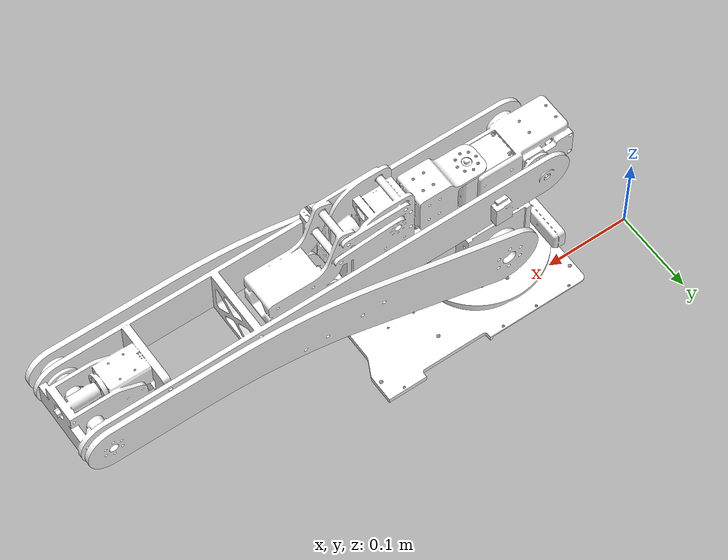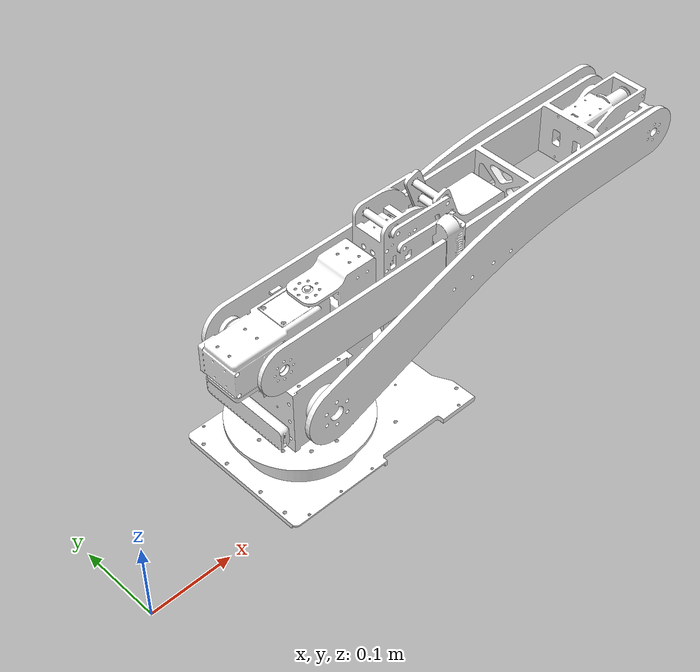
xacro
<?xml version="1.0"?>

<!-- 実機制御用のURDF -->

<robot xmlns:xacro="http://ros.org/wiki/xacro" name="sekirei">
    <!-- Base link with inertial -->
    <!-- Inertia, mass等はあくまで推定値!! -->
    <xacro:arg name="use_real_hw" default="false"/>
    <link name="base_link">
        <inertial>
            <mass value="1.0"/>
            <origin xyz="0 0 0"/>
            <!-- 慣性テンソル -->
            <inertia ixx="0.01" ixy="0.0" ixz="0.0" iyy="0.01" iyz="0.0" izz="0.01"/>
        </inertial>
    </link>

    <!-- Arm Base Link -->
    <link name="arm_base_link">
        <visual>
            <geometry>
                <mesh filename="package://robot_model/meshes/r_a_2019_2020_asm1.STL"/>
            </geometry>
            <origin xyz="-0.08 -0.081 0" rpy="1.57 0 0"/>
            <material name="white">
                <color rgba="1 1 1 1"/>
            </material>
        </visual>
        <collision>
            <geometry>
                <cylinder length="0.1" radius="0.05"/>
            </geometry>
            <origin xyz="0 0 0.05" rpy="0 0 0"/>
        </collision>
        <inertial>
            <mass value="0.5"/>
            <origin xyz="0 0 0.05"/>
            <inertia ixx="0.001" ixy="0.0" ixz="0.0" iyy="0.001" iyz="0.0" izz="0.001"/>
        </inertial>
    </link>

    <joint name="arm_base_link_joint" type="fixed">
        <origin xyz="0.2 0 0.1" rpy="0 0 0"/>
        <parent link="base_link"/>
        <child link="arm_base_link"/>
    </joint>

    <!-- Arm Link 1 -->
    <link name="arm1_link">
        <visual>
            <geometry>
                <mesh filename="package://robot_model/meshes/r_a_2019_2020_asm2.STL"/>
            </geometry>
            <origin xyz="0 0 0.004" rpy="1.57 0 0"/>
            <material name="white">
                <color rgba="1 1 1 1"/>
            </material>
        </visual>
        <collision>
            <geometry>
                <cylinder length="0.08" radius="0.04"/>
            </geometry>
            <origin xyz="0 0 0.04" rpy="0 0 0"/>
        </collision>
        <inertial>
            <mass value="0.3"/>
            <origin xyz="0 0 0.04"/>
            <inertia ixx="0.0008" ixy="0.0" ixz="0.0" iyy="0.0008" iyz="0.0" izz="0.0002"/>
        </inertial>
    </link>

    <joint name="arm_joint1" type="revolute">
        <origin xyz="0 0 0" rpy="0 0 0"/>
        <axis xyz="0 0 1"/>
        <parent link="arm_base_link"/>
        <child link="arm1_link"/>
        <limit effort="5" lower="-3.14" upper="3.14" velocity="1.571"/>
    </joint>

    <!-- Arm Link 2 -->
    <link name="arm2_link">
        <visual>
            <geometry>
                <mesh filename="package://robot_model/meshes/r_a_2019_2020_asm3.STL"/>
            </geometry>
            <origin xyz="0 0 0" rpy="1.57 0 0"/>
            <material name="white">
                <color rgba="1 1 1 1"/>
            </material>
        </visual>
        <collision>
            <geometry>
                <box size="0.45 0.08 0.08"/>
            </geometry>
            <origin xyz="0.225 0 0" rpy="0 0 0"/>
        </collision>
        <inertial>
            <mass value="0.6"/>
            <origin xyz="0.225 0 0"/>
            <inertia ixx="0.001" ixy="0.0" ixz="0.0" iyy="0.010" iyz="0.0" izz="0.010"/>
        </inertial>
    </link>

    <joint name="arm_joint2" type="revolute">
        <origin xyz="0 -0.048 0.078" rpy="0 0 0"/>
        <axis xyz="0 1 0"/>
        <parent link="arm1_link"/>
        <child link="arm2_link"/>
        <limit effort="5" lower="-3.14" upper="3.14" velocity="1.571"/>
    </joint>

    <!-- Arm Link 3 -->
    <link name="arm3_link">
        <visual>
            <geometry>
                <mesh filename="package://robot_model/meshes/r_a_2019_2020_asm4.STL"/>
            </geometry>
            <origin xyz="0 0 0" rpy="1.57 0 0"/>
            <material name="white">
                <color rgba="1 1 1 1"/>
            </material>
        </visual>
        <collision>
            <geometry>
                <box size="0.5 0.08 0.08"/>
            </geometry>
            <origin xyz="-0.25 0 0" rpy="0 0 0"/>
        </collision>
        <inertial>
            <mass value="0.5"/>
            <origin xyz="-0.25 0 0"/>
            <inertia ixx="0.001" ixy="0.0" ixz="0.0" iyy="0.010" iyz="0.0" izz="0.010"/>
        </inertial>
    </link>

    <joint name="arm_joint3" type="revolute">
        <origin xyz="0.45 0.007 0.084" rpy="0 0 0"/>
        <axis xyz="0 -1 0"/>
        <parent link="arm2_link"/>
        <child link="arm3_link"/>
        <limit effort="5" lower="-3.14" upper="3.14" velocity="1.571"/>
    </joint>

    <!-- Arm Link 4 -->
    <link name="arm4_link">
        <visual>
            <geometry>
                <mesh filename="package://robot_model/meshes/r_a_2019_2020_asm5.STL"/>
            </geometry>
            <origin xyz="0 0 0" rpy="1.57 3.14 0"/>
            <material name="white">
                <color rgba="1 1 1 1"/>
            </material>
        </visual>
        <collision>
            <geometry>
                <cylinder length="0.08" radius="0.03"/>
            </geometry>
            <origin xyz="0 0 0.04" rpy="0 0 0"/>
        </collision>
        <inertial>
            <mass value="0.2"/>
            <origin xyz="0 0 0.04"/>
            <inertia ixx="0.0005" ixy="0.0" ixz="0.0" iyy="0.0005" iyz="0.0" izz="0.0001"/>
        </inertial>
    </link>

    <joint name="arm_joint4" type="revolute">
        <origin xyz="-0.5 0.012 0" rpy="0 0 0"/>
        <axis xyz="0 1 0"/>
        <parent link="arm3_link"/>
        <child link="arm4_link"/>
        <limit effort="5" lower="-3.14" upper="3.14" velocity="1.571"/>
    </joint>

    <!-- Arm Link 5 -->
    <link name="arm5_link">
        <visual>
            <geometry>
                <mesh filename="package://robot_model/meshes/r_a_2019_l_asm6.STL"/>
            </geometry>
            <origin xyz="0 0 0" rpy="1.57 3.14 0"/>
            <material name="white">
                <color rgba="1 1 1 1"/>
            </material>
        </visual>
        <collision>
            <geometry>
                <cylinder length="0.06" radius="0.025"/>
            </geometry>
            <origin xyz="0 0 0.03" rpy="0 0 0"/>
        </collision>
        <inertial>
            <mass value="0.1"/>
            <origin xyz="0 0 0.03"/>
            <inertia ixx="0.0002" ixy="0.0" ixz="0.0" iyy="0.0002" iyz="0.0" izz="0.0001"/>
        </inertial>
    </link>

    <joint name="arm_joint5" type="revolute">
        <origin xyz="0.06525 0.028 0.029647" rpy="0 0 0"/>
        <axis xyz="0 0 1"/>
        <parent link="arm4_link"/>
        <child link="arm5_link"/>
        <limit effort="5" lower="-1.57" upper="1.57" velocity="1.571"/>
    </joint>

    <!-- Arm Link 6 -->
    <link name="arm6_link">
        <visual>
            <geometry>
                <mesh filename="package://robot_model/meshes/r_a_2019_l_asm7_ver2.STL"/>
            </geometry>
            <origin xyz="0 0 0" rpy="0 3.14 0"/>
            <material name="white">
                <color rgba="1 1 1 1"/>
            </material>
        </visual>
        <collision>
            <geometry>
                <cylinder length="0.05" radius="0.02"/>
            </geometry>
            <origin xyz="0 0 0.025" rpy="0 0 0"/>
        </collision>
        <inertial>
            <mass value="0.1"/>
            <origin xyz="0 0 0.025"/>
            <inertia ixx="0.0001" ixy="0.0" ixz="0.0" iyy="0.0001" iyz="0.0" izz="0.0001"/>
        </inertial>
    </link>

    <joint name="arm_joint6" type="revolute">
        <origin xyz="0.07425 0 -0.03" rpy="0 0 0"/>
        <axis xyz="1 0 0"/>
        <parent link="arm5_link"/>
        <child link="arm6_link"/>
        <limit effort="5" lower="-3.14" upper="3.14" velocity="1.571"/>
    </joint>

    <!-- Camera Links (simplified) -->
    <link name="gui_d435_link">
        <visual>
            <geometry>
                <mesh filename="package://robot_model/meshes/d435.STL"/>
            </geometry>
            <origin xyz="0 0 0" rpy="1.57 0 -1.57"/>
            <material name="white">
                <color rgba="1 1 1 1"/>
            </material>
        </visual>
        <collision>
            <geometry>
                <box size="0.02 0.09 0.025"/>
            </geometry>
            <origin xyz="0 0 0" rpy="0 0 0"/>
        </collision>
        <inertial>
            <mass value="0.05"/>
            <origin xyz="0 0 0"/>
            <inertia ixx="0.00001" ixy="0.0" ixz="0.0" iyy="0.00001" iyz="0.0" izz="0.00001"/>
        </inertial>
    </link>

    <joint name="gui_d435_joint" type="fixed">
        <origin xyz="0.066 -0.03105 0" rpy="1.57 0 0"/>
        <parent link="arm6_link"/>
        <child link="gui_d435_link"/>
    </joint>

    <link name="gui_t265_link">
        <visual>
            <geometry>
                <mesh filename="package://robot_model/meshes/t265.STL"/>
            </geometry>
            <origin xyz="0 0 0" rpy="1.57 3.14 1.57"/>
            <material name="white">
                <color rgba="1 1 1 1"/>
            </material>
        </visual>
        <collision>
            <geometry>
                <box size="0.02 0.108 0.025"/>
            </geometry>
            <origin xyz="0 0 0" rpy="0 0 0"/>
        </collision>
        <inertial>
            <mass value="0.05"/>
            <origin xyz="0 0 0"/>
            <inertia ixx="0.00001" ixy="0.0" ixz="0.0" iyy="0.00001" iyz="0.0" izz="0.00001"/>
        </inertial>
    </link>

    <joint name="gui_t265_joint" type="fixed">
        <origin xyz="-0.05945 0.02 0.073" rpy="3.14 3.14 0"/>
        <parent link="arm1_link"/>
        <child link="gui_t265_link"/>
    </joint>

    <link name="gripper_left_link"/>
    <link name="gripper_right_link"/>

    <joint name="gripper_joint7" type="revolute">
    <parent link="arm6_link"/>
    <child link="gripper_left_link"/>
    <origin xyz="0 0 0" rpy="0 0 0"/>
    <axis xyz="0 1 0"/>
    <limit lower="-1.57" upper="1.57" effort="5" velocity="1.0"/>
    </joint>

    <joint name="gripper_joint8" type="revolute">
    <parent link="arm6_link"/>
    <child link="gripper_right_link"/>
    <origin xyz="0 0 0" rpy="0 0 0"/>
    <axis xyz="0 1 0"/>
    <limit lower="-1.57" upper="1.57" effort="5" velocity="1.0"/>
    </joint>

    <!-- transmissions for ros2_control / dynamixel_hardware -->
    <!-- SimpleTransmission used to map actuator to joint -->
    <transmission name="arm_joint1_trans">
        <type>transmission_interface/SimpleTransmission</type>
        <actuator name="arm_joint1_motor">
        <!-- 減速比しらべて書く (negative values can be set??)-->
            <mechanicalReduction>20</mechanicalReduction>
            <hardwareInterface>hardware_interface/PositionJointInterface</hardwareInterface>
        </actuator>
        <joint name="arm_joint1">
            <hardwareInterface>hardware_interface/PositionJointInterface</hardwareInterface>
        </joint>
    </transmission>

    <transmission name="arm_joint2_trans">
        <type>transmission_interface/SimpleTransmission</type>
        <actuator name="arm_joint2_motor">
            <mechanicalReduction>20</mechanicalReduction>
            <hardwareInterface>hardware_interface/PositionJointInterface</hardwareInterface>
        </actuator>
        <joint name="arm_joint2">
            <hardwareInterface>hardware_interface/PositionJointInterface</hardwareInterface>
        </joint>
    </transmission>

    <transmission name="arm_joint3_trans">
        <type>transmission_interface/SimpleTransmission</type>
        <actuator name="arm_joint3_motor">
            <mechanicalReduction>20</mechanicalReduction>
	    <hardwareInterface>hardware_interface/PositionJointInterface</hardwareInterface>

        </actuator>
        <joint name="arm_joint3">
            <hardwareInterface>hardware_interface/PositionJointInterface</hardwareInterface>
        </joint>
    </transmission>

    <transmission name="arm_joint4_trans">
        <type>transmission_interface/SimpleTransmission</type>
        <actuator name="arm_joint4_motor">
            <mechanicalReduction>1</mechanicalReduction>
            <hardwareInterface>hardware_interface/PositionJointInterface</hardwareInterface>
        </actuator>
        <joint name="arm_joint4">
            <hardwareInterface>hardware_interface/PositionJointInterface</hardwareInterface>
        </joint>
    </transmission>

    <transmission name="arm_joint5_trans">
        <type>transmission_interface/SimpleTransmission</type>
        <actuator name="arm_joint5_motor">
            <mechanicalReduction>1</mechanicalReduction>
            <hardwareInterface>hardware_interface/PositionJointInterface</hardwareInterface>
        </actuator>
        <joint name="arm_joint5">
            <hardwareInterface>hardware_interface/PositionJointInterface</hardwareInterface>
        </joint>
    </transmission>

    <transmission name="arm_joint6_trans">
        <type>transmission_interface/SimpleTransmission</type>
        <actuator name="arm_joint6_motor">
            <mechanicalReduction>1</mechanicalReduction>
            <hardwareInterface>hardware_interface/PositionJointInterface</hardwareInterface>
        </actuator>
        <joint name="arm_joint6">
            <hardwareInterface>hardware_interface/PositionJointInterface</hardwareInterface>
        </joint>
    </transmission>

    <transmission name="gripper_joint7_trans">
        <type>transmission_interface/SimpleTransmission</type>
        <actuator name="gripper_joint7_motor">
            <mechanicalReduction>1</mechanicalReduction>
            <hardwareInterface
            >hardware_interface/PositionJointInterface</hardwareInterface>
        </actuator>
        <joint name="gripper_joint7">
            <hardwareInterface
            >hardware_interface/PositionJointInterface</hardwareInterface>
        </joint>
    </transmission>

    <transmission name="gripper_joint8_trans">
        <type>transmission_interface/SimpleTransmission</type>
        <actuator name="gripper_joint8_motor">
            <mechanicalReduction>1</mechanicalReduction>
            <hardwareInterface
            >hardware_interface/PositionJointInterface</hardwareInterface>
        </actuator>
        <joint name="gripper_joint8">
            <hardwareInterface
            >hardware_interface/PositionJointInterface</hardwareInterface>
        </joint>
    </transmission>

    <!-- ros2_control configuration for dynamixel_hardware_interface -->

    <!-- Launchファイルから実機制御するかを指定する -->
    <xacro:property name="use_real_hw" value="$(arg use_real_hw)" />

    <xacro:if value="$(arg use_real_hw)">
    <ros2_control name="sekirei_dynamixel_hw" type="system">
        <hardware>
            <!-- plugin provided by dynamixel_hardware_interface package -->
            <plugin>dynamixel_hardware_interface/DynamixelHardware</plugin>
            <!-- Assumptions: XM540-W270 on /dev/ttyUSB0 at 1Mbps. -->
            <param name="port_name">/dev/ttyUSB0</param>
            <param name="baud_rate">1000000</param>
            <param name="error_timeout_ms">1000</param>
            <param name="number_of_joints">8</param>
            <param name="number_of_transmissions">8</param>
            <param name="dynamixel_model_folder">/param/dxl_model</param>
            <param name="disable_torque_at_init">true</param>
            <param name="ignore_hardware_error">true</param>
            <param name="ping_retry_count">3</param>
            <!-- 1:1 mapping: arm_joint1<->dxl21, arm_joint2<->dxl22, ... arm_joint6<->dxl26 (IDs: 21-28, only using 21-26 for 6 joints) -->
            <!-- このへんあやしい -->
          <!-- Real-hardware mapping: invert joint3 sign so hardware commands/states match URDF orientation
              Simulation (use_real_hw=false) will keep the identity mapping in its branch. -->
          <param
                    name="joint_to_transmission_matrix"
                >1,0,0,0,0,0,0,0, 0,1,0,0,0,0,0,0, 0,0,1,0,0,0,0,0, 0,0,0,1,0,0,0,0, 0,0,0,0,1,0,0,0, 0,0,0,0,0,1,0,0, 0,0,0,0,0,0,1,0, 0,0,0,0,0,0,0,1</param>
         <param
                    name="transmission_to_joint_matrix"
                >1,0,0,0,0,0,0,0, 0,1,0,0,0,0,0,0, 0,0,1,0,0,0,0,0, 0,0,0,1,0,0,0,0, 0,0,0,0,1,0,0,0, 0,0,0,0,0,1,0,0, 0,0,0,0,0,0,1,0, 0,0,0,0,0,0,0,1</param>
        </hardware>

        <!-- Joint configurations -->
        <joint name="arm_joint1">
            <command_interface name="position"/>
            <state_interface name="position"/>
            <state_interface name="velocity"/>
        </joint>
        <joint name="arm_joint2">
            <command_interface name="position"/>
            <state_interface name="position"/>
            <state_interface name="velocity"/>
        </joint>
        <joint name="arm_joint3">
            <command_interface name="position"/>
            <state_interface name="position"/>
            <state_interface name="velocity"/>
        </joint>
        <joint name="arm_joint4">
            <command_interface name="position"/>
            <state_interface name="position"/>
            <state_interface name="velocity"/>
        </joint>
        <joint name="arm_joint5">
            <command_interface name="position"/>
            <state_interface name="position"/>
            <state_interface name="velocity"/>
        </joint>
        <joint name="arm_joint6">
            <command_interface name="position"/>
            <state_interface name="position"/>
            <state_interface name="velocity"/>
        </joint>

        <joint name="gripper_joint7">
            <command_interface name="position" />
            <state_interface name="position" />
            <state_interface name="velocity" />
            <state_interface name="effort" />
        </joint>

        <joint name="gripper_joint8">
            <command_interface name="position" />
            <state_interface name="position" />
            <state_interface name="velocity" />
            <state_interface name="effort" />
        </joint>

        <!-- GPIO configurations for Dynamixel motors (IDs: 21-26) -->
        <!-- Note: ID 26 is XM430-W350 (model 1020), others are XM540-W270 (model 1120) -->
        <gpio name="dxl1">
            <param name="type">dxl</param>
            <param name="ID">21</param>
            <command_interface name="Goal Position"/>
            <state_interface name="Present Position"/>
            <state_interface name="Present Velocity"/>
            <state_interface name="Present Current"/>
            <param name="Position P Gain">800</param>
            <param name="Position I Gain">0</param>
            <param name="Position D Gain">4000</param>
            <param name="Drive Mode">1</param>
        </gpio>
        <gpio name="dxl2">
            <param name="type">dxl</param>
            <param name="ID">22</param>
            <command_interface name="Goal Position"/>
            <state_interface name="Present Position"/>
            <state_interface name="Present Velocity"/>
            <state_interface name="Present Current"/>
            <param name="Position P Gain">800</param>
            <param name="Position I Gain">0</param>
            <param name="Position D Gain">4000</param>
            <param name="Drive Mode">0</param>
        </gpio>
        <gpio name="dxl3">
            <param name="type">dxl</param>
            <param name="ID">23</param>
            <command_interface name="Goal Position"/>
            <state_interface name="Present Position"/>
            <state_interface name="Present Velocity"/>
            <state_interface name="Present Current"/>
            <param name="Position P Gain">800</param>
            <param name="Position I Gain">0</param>
            <param name="Position D Gain">4000</param>
            <param name="Drive Mode">1</param>
            <!-- ここ反転の可能性大きい -->
            <!-- やっぱちがうかも -->
            <!-- 向きは1でそろう -->
        </gpio>
        <gpio name="dxl4">
            <param name="type">dxl</param>
            <param name="ID">24</param>
            <command_interface name="Goal Position"/>
            <state_interface name="Present Position"/>
            <state_interface name="Present Velocity"/>
            <state_interface name="Present Current"/>
            <param name="Position P Gain">800</param>
            <param name="Position I Gain">0</param>
            <param name="Position D Gain">4000</param>
            <param name="Drive Mode">0</param>
        </gpio>
        <gpio name="dxl5">
            <param name="type">dxl</param>
            <param name="ID">25</param>
            <command_interface name="Goal Position"/>
            <state_interface name="Present Position"/>
            <state_interface name="Present Velocity"/>
            <state_interface name="Present Current"/>
            <param name="Position P Gain">800</param>
            <param name="Position I Gain">0</param>
            <param name="Position D Gain">4000</param>
            <param name="Drive Mode">0</param>
        </gpio>
        <gpio name="dxl6">
            <param name="type">dxl</param>
            <param name="ID">26</param>
            <command_interface name="Goal Position"/>
            <state_interface name="Present Position"/>
            <state_interface name="Present Velocity"/>
            <state_interface name="Present Current"/>
            <param name="Position P Gain">800</param>
            <param name="Position I Gain">0</param>
            <param name="Position D Gain">4000</param>
            <param name="Drive Mode">0</param>
        </gpio>

        <gpio name="dxl7">
            <param name="type">dxl</param>
            <param name="ID">27</param>
            <command_interface name="Goal Position" />
            <state_interface name="Present Position" />
            <state_interface name="Present Velocity" />
            <state_interface name="Present Current" />
            <param name="Position P Gain">800</param>
            <param name="Position I Gain">0</param>
            <param name="Position D Gain">4000</param>
            <param name="Drive Mode">0</param>
        </gpio>

        <gpio name="dxl8">
            <param name="type">dxl</param>
            <param name="ID">28</param>
            <command_interface name="Goal Position" />
            <state_interface name="Present Position" />
            <state_interface name="Present Velocity" />
            <state_interface name="Present Current" />
            <param name="Position P Gain">800</param>
            <param name="Position I Gain">0</param>
            <param name="Position D Gain">4000</param>
            <param name="Drive Mode">0</param>
        </gpio>

    </ros2_control>
    </xacro:if>

    <xacro:unless value="$(arg use_real_hw)">
     <!-- ros2_control configuration for dummy/mock hardware -->
    <ros2_control name="sekirei_dynamixel_hw" type="system">
        <hardware>
            <!-- Using the mock_components GenericSystem for demo (no real Dynamixel) -->
            <plugin>mock_components/GenericSystem</plugin>
            <!-- mock_components parameters -->
            <param name="mock_sensor_commands">false</param>
            <param name="state_following_offset">0.0</param>
        </hardware>

        <joint name="arm_joint1">
            <command_interface name="position">
                <param name="min">-3.14</param>
                <param name="max">3.14</param>
            </command_interface>
            <state_interface name="position">
                <param name="initial_value">0.0</param>
            </state_interface>
            <state_interface name="velocity"/>
            <state_interface name="effort">
                <param name="initial_value">0.0</param>
            </state_interface>

        </joint>
        <joint name="arm_joint2">
            <command_interface name="position">
                <param name="min">-3.14</param>
                <param name="max">0</param>
            </command_interface>
            <state_interface name="position">
                <param name="initial_value">0.0</param>
            </state_interface>
            <state_interface name="velocity"/>
            <state_interface name="effort">
                <param name="initial_value">0.0</param>
            </state_interface>
        </joint>
        <joint name="arm_joint3">
            <command_interface name="position">
                <param name="min">0</param>
                <param name="max">3.14</param>
            </command_interface>
            <state_interface name="position">
                <param name="initial_value">0.0</param>
            </state_interface>
            <state_interface name="velocity"/>
            <state_interface name="effort">
                <param name="initial_value">0.0</param>
            </state_interface>
        </joint>
        <joint name="arm_joint4">
            <command_interface name="position">
                <param name="min">-4.71</param>
                <param name="max">0</param>
            </command_interface>
            <state_interface name="position">
                <param name="initial_value">0.0</param>
            </state_interface>
            <state_interface name="velocity"/>
            <state_interface name="effort">
                <param name="initial_value">0.0</param>
            </state_interface>
        </joint>
        <joint name="arm_joint5">
            <command_interface name="position">
                <param name="min">-1.57</param>
                <param name="max">1.57</param>
            </command_interface>
            <state_interface name="position">
                <param name="initial_value">0.0</param>
            </state_interface>
            <state_interface name="velocity"/>
            <state_interface name="effort">
                <param name="initial_value">0.0</param>
            </state_interface>
        </joint>
        <joint name="arm_joint6">
            <command_interface name="position">
                <param name="min">-3.14</param>
                <param name="max">3.14</param>
            </command_interface>
            <state_interface name="position">
                <param name="initial_value">0.0</param>
            </state_interface>
            <state_interface name="velocity"/>
            <state_interface name="effort">
                <param name="initial_value">0.0</param>
            </state_interface>
        </joint>

        <joint name="gripper_joint7">
            <command_interface name="position">
                <param name="min">-1.57</param>
                <param name="max">1.57</param>
            </command_interface>
            <state_interface name="position">
                <param name="initial_value">0.0</param>
            </state_interface>
            <state_interface name="velocity" />
            <state_interface name="effort">
                <param name="initial_value">0.0</param>
            </state_interface>
        </joint>

        <joint name="gripper_joint8">
            <command_interface name="position">
                <param name="min">-1.57</param>
                <param name="max">1.57</param>
            </command_interface>
            <state_interface name="position">
                <param name="initial_value">0.0</param>
            </state_interface>
            <state_interface name="velocity" />
            <state_interface name="effort">
                <param name="initial_value">0.0</param>
            </state_interface>
        </joint>

    </ros2_control>
    </xacro:unless>

</robot>
